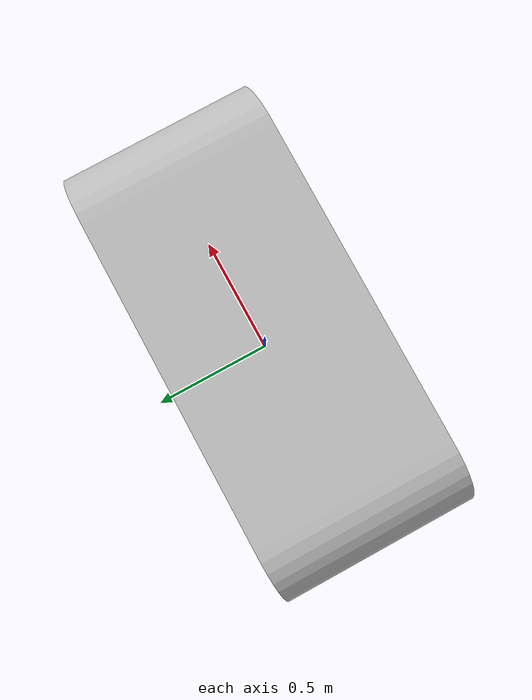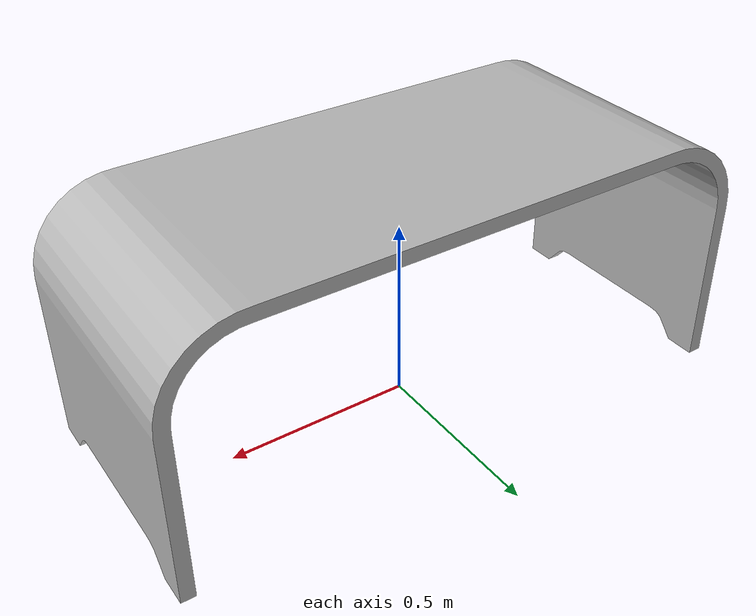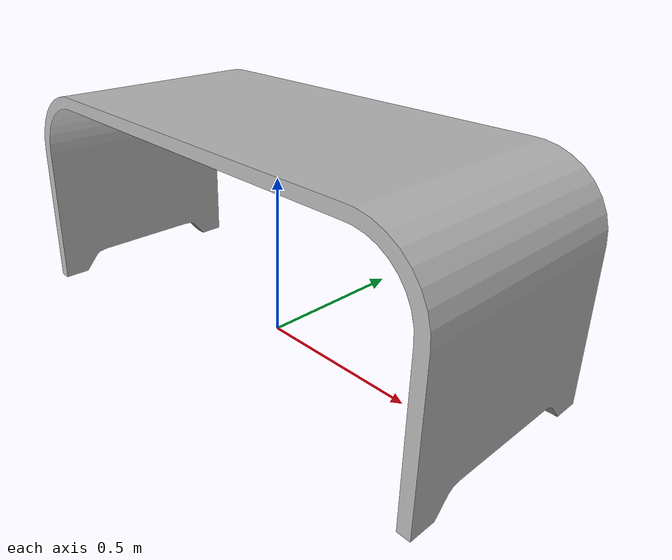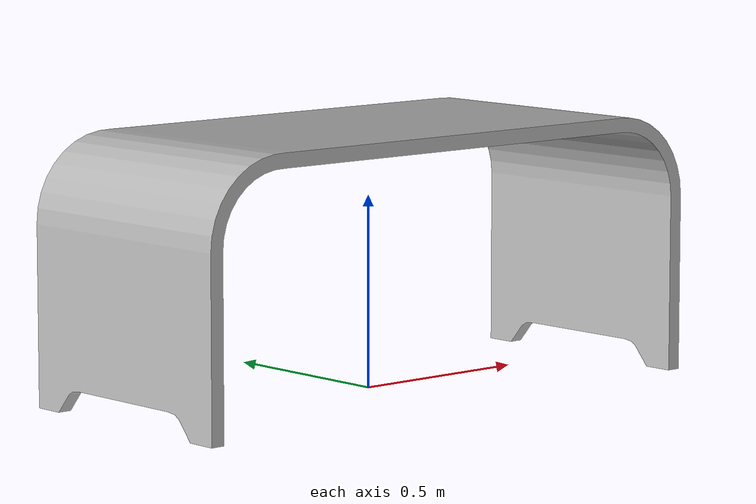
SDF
<sdf version="1.5">
  <model name="desk">
    <static>true</static>
    <link name="link">
      <visual name="visual">
        <geometry>
          <mesh>
            <uri>model://desk/meshes/desk.obj</uri>
            <scale>0.001 0.001 0.001</scale>
          </mesh>
        </geometry>
      </visual>
    </link>
  </model>
</sdf>
